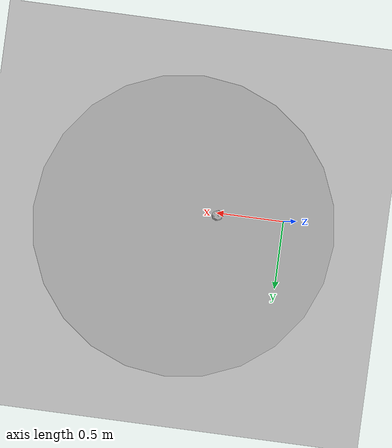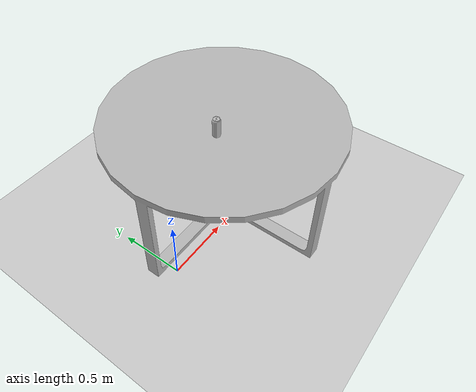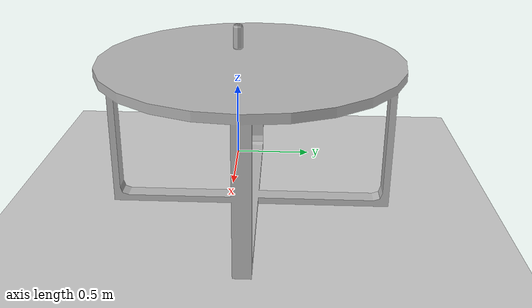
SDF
<sdf version='1.10'>
  <world name='empty'>
    <physics name='1ms' type='ignored'>
      <max_step_size>0.001</max_step_size>
      <real_time_factor>1</real_time_factor>
      <real_time_update_rate>1000</real_time_update_rate>
    </physics>
    <plugin name='gz::sim::systems::Physics' filename='gz-sim-physics-system'/>
    <plugin name='gz::sim::systems::UserCommands' filename='gz-sim-user-commands-system'/>
    <plugin name='gz::sim::systems::SceneBroadcaster' filename='gz-sim-scene-broadcaster-system'/>
    <plugin name='gz::sim::systems::Contact' filename='gz-sim-contact-system'/>
    <gravity>0 0 -9.8000000000000007</gravity>
    <magnetic_field>5.5644999999999998e-06 2.2875799999999999e-05 -4.2388400000000002e-05</magnetic_field>
    <atmosphere type='adiabatic'/>
    <scene>
      <ambient>0.400000006 0.400000006 0.400000006 1</ambient>
      <background>0.699999988 0.699999988 0.699999988 1</background>
      <shadows>true</shadows>
    </scene>
    <model name='ground_plane'>
      <static>true</static>
      <link name='link'>
        <collision name='collision'>
          <geometry>
            <plane>
              <normal>0 0 1</normal>
              <size>100 100</size>
            </plane>
          </geometry>
          <surface>
            <friction>
              <ode/>
            </friction>
            <bounce/>
            <contact/>
          </surface>
        </collision>
        <visual name='visual'>
          <geometry>
            <plane>
              <normal>0 0 1</normal>
              <size>100 100</size>
            </plane>
          </geometry>
          <material>
            <ambient>0.800000012 0.800000012 0.800000012 1</ambient>
            <diffuse>0.800000012 0.800000012 0.800000012 1</diffuse>
            <specular>0.800000012 0.800000012 0.800000012 1</specular>
          </material>
        </visual>
        <pose>0 0 0 0 0 0</pose>
        <inertial>
          <pose>0 0 0 0 0 0</pose>
          <mass>1</mass>
          <inertia>
            <ixx>1</ixx>
            <ixy>0</ixy>
            <ixz>0</ixz>
            <iyy>1</iyy>
            <iyz>0</iyz>
            <izz>1</izz>
          </inertia>
        </inertial>
        <enable_wind>false</enable_wind>
      </link>
      <pose>0 0 0 0 0 0</pose>
      <self_collide>false</self_collide>
    </model>

    <model name='CoffeeTable'>
      <link name='body'>
        <pose>0 0 0 0 0 0</pose>
        <visual name='visual'>
          <geometry>
            <mesh>
              <uri>file:///opt/ros/jazzy/share/CoffeeTable/model://CoffeeTable/meshes/CoffeeTable.obj</uri>
              <scale>0.02 0.02 0.02</scale>
            </mesh>
          </geometry>
        </visual>
        <collision name='collision'>
          <geometry>
            <mesh>
              <uri>file:///opt/ros/jazzy/share/CoffeeTable/model://CoffeeTable/meshes/CoffeeTable.obj</uri>
              <scale>0.02 0.02 0.02</scale>
            </mesh>
          </geometry>
        </collision>
        <inertial>
          <pose>0 0 0 0 0 0</pose>
          <mass>1</mass>
          <inertia>
            <ixx>1</ixx>
            <ixy>0</ixy>
            <ixz>0</ixz>
            <iyy>1</iyy>
            <iyz>0</iyz>
            <izz>1</izz>
          </inertia>
        </inertial>
        <enable_wind>false</enable_wind>
      </link>
      <pose>0.72860800000000003 0.12618599999999999 -0.00029676300000000002 -3.3434600000000001e-14 -3.3434700000000002e-14 -1.6617099999999999e-24</pose>
      <static>false</static>
      <self_collide>false</self_collide>
    </model>
    <model name='Coke'>
      <static>false</static>
      <link name='body'>
        <pose>0 0 0 0 0 0</pose>
        <visual name='visual'>
          <geometry>
            <mesh>
              <uri>file:///opt/ros/jazzy/share/Coke/model://Coke/meshes/coke.obj</uri>
            </mesh>
          </geometry>
        </visual>
        <collision name='collision'>
          <geometry>
            <mesh>
              <uri>file:///opt/ros/jazzy/share/Coke/model://Coke/meshes/coke.obj</uri>
            </mesh>
          </geometry>
        </collision>
        <inertial>
          <mass>1</mass>
          <inertia>
            <ixx>0.0033666666666666671</ixx>
            <iyy>0.00086666666666666674</iyy>
            <izz>0.0041666666666666675</izz>
            <ixy>0</ixy>
            <ixz>0</ixz>
            <iyz>0</iyz>
          </inertia>
          <pose>0 0 0 0 0 0</pose>
        </inertial>
        <enable_wind>false</enable_wind>
      </link>
      <pose>0.54449301958084106 0.042614899575710297 0.92201024293899536 0 0 0</pose>
      <self_collide>false</self_collide>
    </model>
    <light name='sun' type='directional'>
      <pose>0 0 10 0 0 0</pose>
      <cast_shadows>true</cast_shadows>
      <intensity>1</intensity>
      <direction>-0.5 0.10000000000000001 -0.90000000000000002</direction>
      <diffuse>0.800000012 0.800000012 0.800000012 1</diffuse>
      <specular>0.200000003 0.200000003 0.200000003 1</specular>
      <attenuation>
        <range>1000</range>
        <linear>0.0099999997764825821</linear>
        <constant>0.89999997615814209</constant>
        <quadratic>0.0010000000474974513</quadratic>
      </attenuation>
      <spot>
        <inner_angle>0</inner_angle>
        <outer_angle>0</outer_angle>
        <falloff>0</falloff>
      </spot>
    </light>
  </world>
</sdf>
